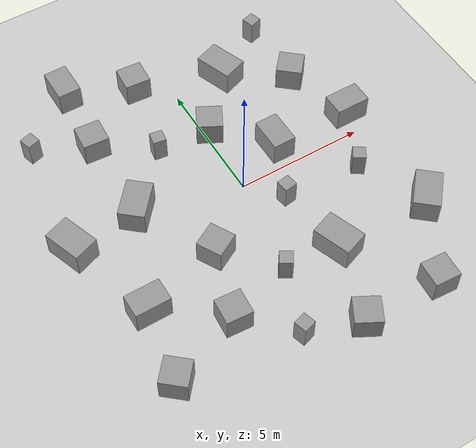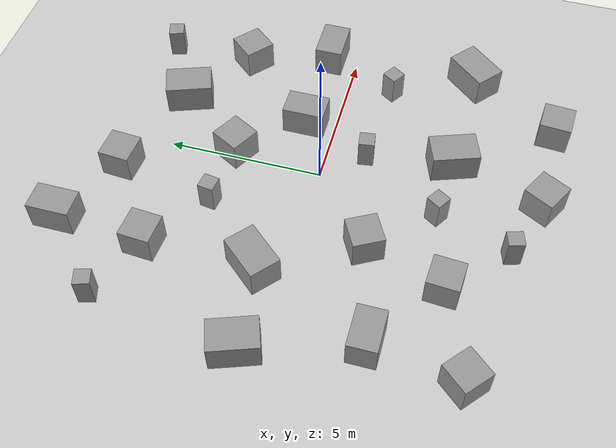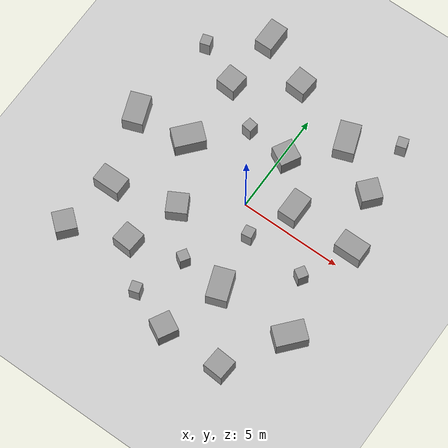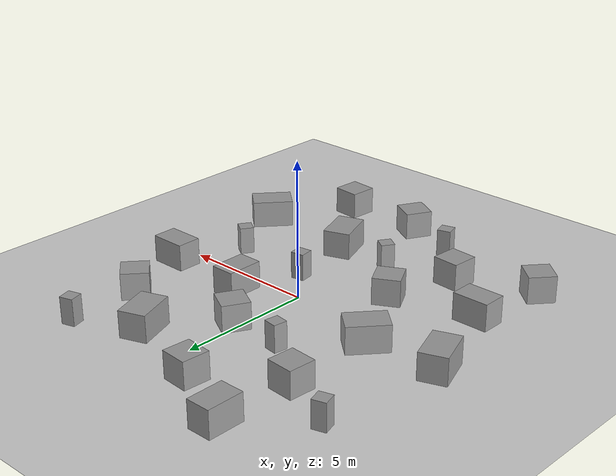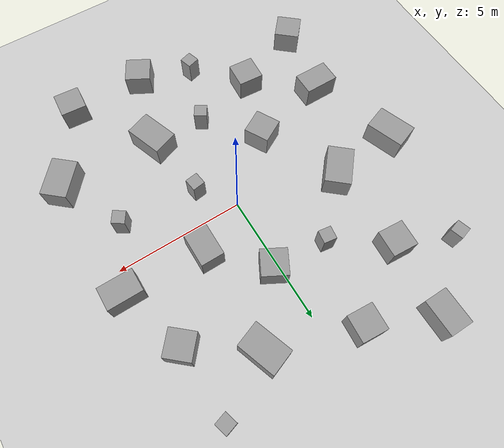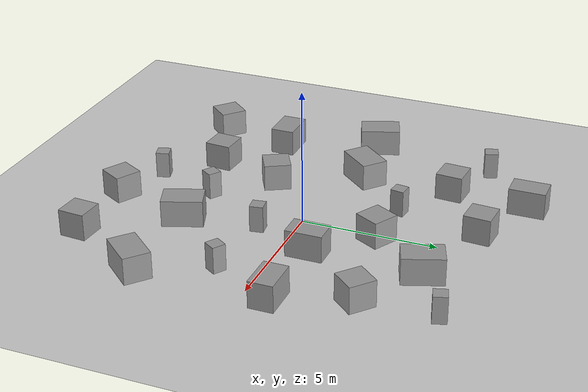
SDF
<sdf version="1.7">
 <world name="default">
  <light name="sun" type="directional">
   <pose>0 0 10 0 -0 0</pose>
   <diffuse>0.8 0.8 0.8 1</diffuse>
   <specular>0.2 0.2 0.2 1</specular>
   <attenuation>
    <range>1000</range>
    <constant>0.9</constant>
    <linear>0.01</linear>
    <quadratic>0.001</quadratic>
   </attenuation>
   <direction>-0.5 0.1 -0.9</direction>
   <spot><inner_angle>0</inner_angle><outer_angle>0</outer_angle><falloff>0</falloff></spot>
  </light>
  <model name="ground_plane">
   <static>1</static>
   <link name="link">
    <collision name="collision">
     <geometry><plane><normal>0 0 1</normal><size>100 100</size></plane></geometry>
     <surface>
      <contact><collide_bitmask>65535</collide_bitmask></contact>
      <friction><ode><mu>100</mu><mu2>50</mu2></ode></friction>
     </surface>
    </collision>
    <visual name="visual">
     <cast_shadows>0</cast_shadows>
     <geometry><plane><normal>0 0 1</normal><size>100 100</size></plane></geometry>
     <material>
      <script><uri>file://media/materials/scripts/gazebo.material</uri><name>Gazebo/Grey</name></script>
     </material>
    </visual>
   </link>
  </model>
  <gravity>0 0 -9.8</gravity>
  <magnetic_field>6e-06 2.3e-05 -4.2e-05</magnetic_field>
  <atmosphere type="adiabatic"/>
  <physics type="ode">
   <max_step_size>0.001</max_step_size>
   <real_time_factor>1</real_time_factor>
   <real_time_update_rate>500</real_time_update_rate>
  </physics>
  <scene><ambient>0.4 0.4 0.4 1</ambient><background>0.7 0.7 0.7 1</background><shadows>1</shadows></scene>
  <spherical_coordinates>
   <surface_model>EARTH_WGS84</surface_model>
   <latitude_deg>0</latitude_deg>
   <longitude_deg>0</longitude_deg>
   <elevation>0</elevation>
   <heading_deg>0</heading_deg>
  </spherical_coordinates>
  <model name="OnlyRectangles">
   <link name="link_0">
    <inertial>
     <mass>1</mass>
     <inertia>
      <ixx>0.166667</ixx>
      <ixy>0</ixy>
      <ixz>0</ixz>
      <iyy>0.166667</iyy>
      <iyz>0</iyz>
      <izz>0.166667</izz>
     </inertia>
    </inertial>
    <pose>-1.86233 -1.91106 0 0 -0 0.5</pose>
    <visual name="visual">
     <geometry><box><size>1 1 1</size></box></geometry>
     <material>
      <lighting>1</lighting>
      <script><uri>file://media/materials/scripts/gazebo.material</uri><name>Gazebo/Grey</name></script>
      <shader type="pixel"><normal_map>__default__</normal_map></shader>
      <ambient>0.3 0.3 0.3 1</ambient>
      <diffuse>0.7 0.7 0.7 1</diffuse>
      <specular>0.01 0.01 0.01 1</specular>
      <emissive>0 0 0 1</emissive>
     </material>
    </visual>
    <collision name="collision">
     <geometry><box><size>1 1 1</size></box></geometry>
     <surface>
      <friction>
       <ode><mu>1</mu><mu2>1</mu2><fdir1>0 0 0</fdir1><slip1>0</slip1><slip2>0</slip2></ode>
       <torsional>
        <coefficient>1</coefficient>
        <patch_radius>0</patch_radius>
        <surface_radius>0</surface_radius>
        <use_patch_radius>1</use_patch_radius>
        <ode><slip>0</slip></ode>
       </torsional>
      </friction>
      <bounce><restitution_coefficient>0</restitution_coefficient><threshold>1e+06</threshold></bounce>
      <contact>
       <collide_without_contact>0</collide_without_contact>
       <collide_without_contact_bitmask>1</collide_without_contact_bitmask>
       <collide_bitmask>1</collide_bitmask>
       <ode>
        <soft_cfm>0</soft_cfm>
        <soft_erp>0.2</soft_erp>
        <kp>1e+13</kp>
        <kd>1</kd>
        <max_vel>0.01</max_vel>
        <min_depth>0</min_depth>
       </ode>
       <bullet>
        <split_impulse>1</split_impulse>
        <split_impulse_penetration_threshold>-0.01</split_impulse_penetration_threshold>
        <soft_cfm>0</soft_cfm>
        <soft_erp>0.2</soft_erp>
        <kp>1e+13</kp>
        <kd>1</kd>
       </bullet>
      </contact>
     </surface>
    </collision>
   </link>
   <link name="link_0_clone">
    <inertial>
     <mass>1</mass>
     <inertia>
      <ixx>0.166667</ixx>
      <ixy>0</ixy>
      <ixz>0</ixz>
      <iyy>0.166667</iyy>
      <iyz>0</iyz>
      <izz>0.166667</izz>
     </inertia>
    </inertial>
    <pose>4.84886 3.66237 0 0 0 -2.28319</pose>
    <visual name="visual">
     <geometry><box><size>1 1 1</size></box></geometry>
     <material>
      <lighting>1</lighting>
      <script><uri>file://media/materials/scripts/gazebo.material</uri><name>Gazebo/Grey</name></script>
      <shader type="pixel"><normal_map>__default__</normal_map></shader>
      <ambient>0.3 0.3 0.3 1</ambient>
      <diffuse>0.7 0.7 0.7 1</diffuse>
      <specular>0.01 0.01 0.01 1</specular>
      <emissive>0 0 0 1</emissive>
     </material>
    </visual>
    <collision name="collision">
     <geometry><box><size>1 1 1</size></box></geometry>
     <surface>
      <friction>
       <ode><mu>1</mu><mu2>1</mu2><fdir1>0 0 0</fdir1><slip1>0</slip1><slip2>0</slip2></ode>
       <torsional>
        <coefficient>1</coefficient>
        <patch_radius>0</patch_radius>
        <surface_radius>0</surface_radius>
        <use_patch_radius>1</use_patch_radius>
        <ode><slip>0</slip></ode>
       </torsional>
      </friction>
      <bounce><restitution_coefficient>0</restitution_coefficient><threshold>1e+06</threshold></bounce>
      <contact>
       <collide_without_contact>0</collide_without_contact>
       <collide_without_contact_bitmask>1</collide_without_contact_bitmask>
       <collide_bitmask>1</collide_bitmask>
       <ode>
        <soft_cfm>0</soft_cfm>
        <soft_erp>0.2</soft_erp>
        <kp>1e+13</kp>
        <kd>1</kd>
        <max_vel>0.01</max_vel>
        <min_depth>0</min_depth>
       </ode>
       <bullet>
        <split_impulse>1</split_impulse>
        <split_impulse_penetration_threshold>-0.01</split_impulse_penetration_threshold>
        <soft_cfm>0</soft_cfm>
        <soft_erp>0.2</soft_erp>
        <kp>1e+13</kp>
        <kd>1</kd>
       </bullet>
      </contact>
     </surface>
    </collision>
   </link>
   <link name="link_0_clone_0">
    <inertial>
     <mass>1</mass>
     <inertia>
      <ixx>0.166667</ixx>
      <ixy>0</ixy>
      <ixz>0</ixz>
      <iyy>0.166667</iyy>
      <iyz>0</iyz>
      <izz>0.166667</izz>
     </inertia>
    </inertial>
    <pose>4.07382 -6.91562 0 0 -0 1.5</pose>
    <visual name="visual">
     <geometry><box><size>1 1 1</size></box></geometry>
     <material>
      <lighting>1</lighting>
      <script><uri>file://media/materials/scripts/gazebo.material</uri><name>Gazebo/Grey</name></script>
      <shader type="pixel"><normal_map>__default__</normal_map></shader>
      <ambient>0.3 0.3 0.3 1</ambient>
      <diffuse>0.7 0.7 0.7 1</diffuse>
      <specular>0.01 0.01 0.01 1</specular>
      <emissive>0 0 0 1</emissive>
     </material>
    </visual>
    <collision name="collision">
     <geometry><box><size>1 1 1</size></box></geometry>
     <surface>
      <friction>
       <ode><mu>1</mu><mu2>1</mu2><fdir1>0 0 0</fdir1><slip1>0</slip1><slip2>0</slip2></ode>
       <torsional>
        <coefficient>1</coefficient>
        <patch_radius>0</patch_radius>
        <surface_radius>0</surface_radius>
        <use_patch_radius>1</use_patch_radius>
        <ode><slip>0</slip></ode>
       </torsional>
      </friction>
      <bounce><restitution_coefficient>0</restitution_coefficient><threshold>1e+06</threshold></bounce>
      <contact>
       <collide_without_contact>0</collide_without_contact>
       <collide_without_contact_bitmask>1</collide_without_contact_bitmask>
       <collide_bitmask>1</collide_bitmask>
       <ode>
        <soft_cfm>0</soft_cfm>
        <soft_erp>0.2</soft_erp>
        <kp>1e+13</kp>
        <kd>1</kd>
        <max_vel>0.01</max_vel>
        <min_depth>0</min_depth>
       </ode>
       <bullet>
        <split_impulse>1</split_impulse>
        <split_impulse_penetration_threshold>-0.01</split_impulse_penetration_threshold>
        <soft_cfm>0</soft_cfm>
        <soft_erp>0.2</soft_erp>
        <kp>1e+13</kp>
        <kd>1</kd>
       </bullet>
      </contact>
     </surface>
    </collision>
   </link>
   <link name="link_0_clone_0_clone">
    <inertial>
     <mass>1</mass>
     <inertia>
      <ixx>0.166667</ixx>
      <ixy>0</ixy>
      <ixz>0</ixz>
      <iyy>0.166667</iyy>
      <iyz>0</iyz>
      <izz>0.166667</izz>
     </inertia>
    </inertial>
    <pose>-2.6988 -4.48768 0 0 -0 1.5</pose>
    <visual name="visual">
     <geometry><box><size>1 1 1</size></box></geometry>
     <material>
      <lighting>1</lighting>
      <script><uri>file://media/materials/scripts/gazebo.material</uri><name>Gazebo/Grey</name></script>
      <shader type="pixel"><normal_map>__default__</normal_map></shader>
      <ambient>0.3 0.3 0.3 1</ambient>
      <diffuse>0.7 0.7 0.7 1</diffuse>
      <specular>0.01 0.01 0.01 1</specular>
      <emissive>0 0 0 1</emissive>
     </material>
    </visual>
    <collision name="collision">
     <geometry><box><size>1 1 1</size></box></geometry>
     <surface>
      <friction>
       <ode><mu>1</mu><mu2>1</mu2><fdir1>0 0 0</fdir1><slip1>0</slip1><slip2>0</slip2></ode>
       <torsional>
        <coefficient>1</coefficient>
        <patch_radius>0</patch_radius>
        <surface_radius>0</surface_radius>
        <use_patch_radius>1</use_patch_radius>
        <ode><slip>0</slip></ode>
       </torsional>
      </friction>
      <bounce><restitution_coefficient>0</restitution_coefficient><threshold>1e+06</threshold></bounce>
      <contact>
       <collide_without_contact>0</collide_without_contact>
       <collide_without_contact_bitmask>1</collide_without_contact_bitmask>
       <collide_bitmask>1</collide_bitmask>
       <ode>
        <soft_cfm>0</soft_cfm>
        <soft_erp>0.2</soft_erp>
        <kp>1e+13</kp>
        <kd>1</kd>
        <max_vel>0.01</max_vel>
        <min_depth>0</min_depth>
       </ode>
       <bullet>
        <split_impulse>1</split_impulse>
        <split_impulse_penetration_threshold>-0.01</split_impulse_penetration_threshold>
        <soft_cfm>0</soft_cfm>
        <soft_erp>0.2</soft_erp>
        <kp>1e+13</kp>
        <kd>1</kd>
       </bullet>
      </contact>
     </surface>
    </collision>
   </link>
   <link name="link_0_clone_0_clone_0">
    <inertial>
     <mass>1</mass>
     <inertia>
      <ixx>0.166667</ixx>
      <ixy>0</ixy>
      <ixz>0</ixz>
      <iyy>0.166667</iyy>
      <iyz>0</iyz>
      <izz>0.166667</izz>
     </inertia>
    </inertial>
    <pose>-3.444 4.51632 0 0 -0 1.5</pose>
    <visual name="visual">
     <geometry><box><size>1 1 1</size></box></geometry>
     <material>
      <lighting>1</lighting>
      <script><uri>file://media/materials/scripts/gazebo.material</uri><name>Gazebo/Grey</name></script>
      <shader type="pixel"><normal_map>__default__</normal_map></shader>
      <ambient>0.3 0.3 0.3 1</ambient>
      <diffuse>0.7 0.7 0.7 1</diffuse>
      <specular>0.01 0.01 0.01 1</specular>
      <emissive>0 0 0 1</emissive>
     </material>
    </visual>
    <collision name="collision">
     <geometry><box><size>1 1 1</size></box></geometry>
     <surface>
      <friction>
       <ode><mu>1</mu><mu2>1</mu2><fdir1>0 0 0</fdir1><slip1>0</slip1><slip2>0</slip2></ode>
       <torsional>
        <coefficient>1</coefficient>
        <patch_radius>0</patch_radius>
        <surface_radius>0</surface_radius>
        <use_patch_radius>1</use_patch_radius>
        <ode><slip>0</slip></ode>
       </torsional>
      </friction>
      <bounce><restitution_coefficient>0</restitution_coefficient><threshold>1e+06</threshold></bounce>
      <contact>
       <collide_without_contact>0</collide_without_contact>
       <collide_without_contact_bitmask>1</collide_without_contact_bitmask>
       <collide_bitmask>1</collide_bitmask>
       <ode>
        <soft_cfm>0</soft_cfm>
        <soft_erp>0.2</soft_erp>
        <kp>1e+13</kp>
        <kd>1</kd>
        <max_vel>0.01</max_vel>
        <min_depth>0</min_depth>
       </ode>
       <bullet>
        <split_impulse>1</split_impulse>
        <split_impulse_penetration_threshold>-0.01</split_impulse_penetration_threshold>
        <soft_cfm>0</soft_cfm>
        <soft_erp>0.2</soft_erp>
        <kp>1e+13</kp>
        <kd>1</kd>
       </bullet>
      </contact>
     </surface>
    </collision>
   </link>
   <link name="link_0_clone_0_clone_1">
    <inertial>
     <mass>1</mass>
     <inertia>
      <ixx>0.166667</ixx>
      <ixy>0</ixy>
      <ixz>0</ixz>
      <iyy>0.166667</iyy>
      <iyz>0</iyz>
      <izz>0.166667</izz>
     </inertia>
    </inertial>
    <pose>-0.746789 6.29063 0 0 -0 1.5</pose>
    <visual name="visual">
     <geometry><box><size>1 1 1</size></box></geometry>
     <material>
      <lighting>1</lighting>
      <script><uri>file://media/materials/scripts/gazebo.material</uri><name>Gazebo/Grey</name></script>
      <shader type="pixel"><normal_map>__default__</normal_map></shader>
      <ambient>0.3 0.3 0.3 1</ambient>
      <diffuse>0.7 0.7 0.7 1</diffuse>
      <specular>0.01 0.01 0.01 1</specular>
      <emissive>0 0 0 1</emissive>
     </material>
    </visual>
    <collision name="collision">
     <geometry><box><size>1 1 1</size></box></geometry>
     <surface>
      <friction>
       <ode><mu>1</mu><mu2>1</mu2><fdir1>0 0 0</fdir1><slip1>0</slip1><slip2>0</slip2></ode>
       <torsional>
        <coefficient>1</coefficient>
        <patch_radius>0</patch_radius>
        <surface_radius>0</surface_radius>
        <use_patch_radius>1</use_patch_radius>
        <ode><slip>0</slip></ode>
       </torsional>
      </friction>
      <bounce><restitution_coefficient>0</restitution_coefficient><threshold>1e+06</threshold></bounce>
      <contact>
       <collide_without_contact>0</collide_without_contact>
       <collide_without_contact_bitmask>1</collide_without_contact_bitmask>
       <collide_bitmask>1</collide_bitmask>
       <ode>
        <soft_cfm>0</soft_cfm>
        <soft_erp>0.2</soft_erp>
        <kp>1e+13</kp>
        <kd>1</kd>
        <max_vel>0.01</max_vel>
        <min_depth>0</min_depth>
       </ode>
       <bullet>
        <split_impulse>1</split_impulse>
        <split_impulse_penetration_threshold>-0.01</split_impulse_penetration_threshold>
        <soft_cfm>0</soft_cfm>
        <soft_erp>0.2</soft_erp>
        <kp>1e+13</kp>
        <kd>1</kd>
       </bullet>
      </contact>
     </surface>
    </collision>
   </link>
   <link name="link_0_clone_1">
    <inertial>
     <mass>1</mass>
     <inertia>
      <ixx>0.166667</ixx>
      <ixy>0</ixy>
      <ixz>0</ixz>
      <iyy>0.166667</iyy>
      <iyz>0</iyz>
      <izz>0.166667</izz>
     </inertia>
    </inertial>
    <pose>-5.54051 5.42187 0 0 0 -1.28319</pose>
    <visual name="visual">
     <geometry><box><size>0.5 0.5 1</size></box></geometry>
     <material>
      <lighting>1</lighting>
      <script><uri>file://media/materials/scripts/gazebo.material</uri><name>Gazebo/Grey</name></script>
      <shader type="pixel"><normal_map>__default__</normal_map></shader>
      <ambient>0.3 0.3 0.3 1</ambient>
      <diffuse>0.7 0.7 0.7 1</diffuse>
      <specular>0.01 0.01 0.01 1</specular>
      <emissive>0 0 0 1</emissive>
     </material>
    </visual>
    <collision name="collision">
     <geometry><box><size>0.5 0.5 1</size></box></geometry>
     <surface>
      <friction>
       <ode><mu>1</mu><mu2>1</mu2><fdir1>0 0 0</fdir1><slip1>0</slip1><slip2>0</slip2></ode>
       <torsional>
        <coefficient>1</coefficient>
        <patch_radius>0</patch_radius>
        <surface_radius>0</surface_radius>
        <use_patch_radius>1</use_patch_radius>
        <ode><slip>0</slip></ode>
       </torsional>
      </friction>
      <bounce><restitution_coefficient>0</restitution_coefficient><threshold>1e+06</threshold></bounce>
      <contact>
       <collide_without_contact>0</collide_without_contact>
       <collide_without_contact_bitmask>1</collide_without_contact_bitmask>
       <collide_bitmask>1</collide_bitmask>
       <ode>
        <soft_cfm>0</soft_cfm>
        <soft_erp>0.2</soft_erp>
        <kp>1e+13</kp>
        <kd>1</kd>
        <max_vel>0.01</max_vel>
        <min_depth>0</min_depth>
       </ode>
       <bullet>
        <split_impulse>1</split_impulse>
        <split_impulse_penetration_threshold>-0.01</split_impulse_penetration_threshold>
        <soft_cfm>0</soft_cfm>
        <soft_erp>0.2</soft_erp>
        <kp>1e+13</kp>
        <kd>1</kd>
       </bullet>
      </contact>
     </surface>
    </collision>
   </link>
   <link name="link_0_clone_1_clone">
    <inertial>
     <mass>1</mass>
     <inertia>
      <ixx>0.166667</ixx>
      <ixy>0</ixy>
      <ixz>0</ixz>
      <iyy>0.166667</iyy>
      <iyz>0</iyz>
      <izz>0.166667</izz>
     </inertia>
    </inertial>
    <pose>-1.40181 3.10383 0 0 -0 3</pose>
    <visual name="visual">
     <geometry><box><size>0.5 0.5 1</size></box></geometry>
     <material>
      <lighting>1</lighting>
      <script><uri>file://media/materials/scripts/gazebo.material</uri><name>Gazebo/Grey</name></script>
      <shader type="pixel"><normal_map>__default__</normal_map></shader>
      <ambient>0.3 0.3 0.3 1</ambient>
      <diffuse>0.7 0.7 0.7 1</diffuse>
      <specular>0.01 0.01 0.01 1</specular>
      <emissive>0 0 0 1</emissive>
     </material>
    </visual>
    <collision name="collision">
     <geometry><box><size>0.5 0.5 1</size></box></geometry>
     <surface>
      <friction>
       <ode><mu>1</mu><mu2>1</mu2><fdir1>0 0 0</fdir1><slip1>0</slip1><slip2>0</slip2></ode>
       <torsional>
        <coefficient>1</coefficient>
        <patch_radius>0</patch_radius>
        <surface_radius>0</surface_radius>
        <use_patch_radius>1</use_patch_radius>
        <ode><slip>0</slip></ode>
       </torsional>
      </friction>
      <bounce><restitution_coefficient>0</restitution_coefficient><threshold>1e+06</threshold></bounce>
      <contact>
       <collide_without_contact>0</collide_without_contact>
       <collide_without_contact_bitmask>1</collide_without_contact_bitmask>
       <collide_bitmask>1</collide_bitmask>
       <ode>
        <soft_cfm>0</soft_cfm>
        <soft_erp>0.2</soft_erp>
        <kp>1e+13</kp>
        <kd>1</kd>
        <max_vel>0.01</max_vel>
        <min_depth>0</min_depth>
       </ode>
       <bullet>
        <split_impulse>1</split_impulse>
        <split_impulse_penetration_threshold>-0.01</split_impulse_penetration_threshold>
        <soft_cfm>0</soft_cfm>
        <soft_erp>0.2</soft_erp>
        <kp>1e+13</kp>
        <kd>1</kd>
       </bullet>
      </contact>
     </surface>
    </collision>
   </link>
   <link name="link_0_clone_1_clone_0">
    <inertial>
     <mass>1</mass>
     <inertia>
      <ixx>0.166667</ixx>
      <ixy>0</ixy>
      <ixz>0</ixz>
      <iyy>0.166667</iyy>
      <iyz>0</iyz>
      <izz>0.166667</izz>
     </inertia>
    </inertial>
    <pose>4.59222 -1.38594 0 0 -0 1</pose>
    <visual name="visual">
     <geometry><box><size>0.5 0.5 1</size></box></geometry>
     <material>
      <lighting>1</lighting>
      <script><uri>file://media/materials/scripts/gazebo.material</uri><name>Gazebo/Grey</name></script>
      <shader type="pixel"><normal_map>__default__</normal_map></shader>
      <ambient>0.3 0.3 0.3 1</ambient>
      <diffuse>0.7 0.7 0.7 1</diffuse>
      <specular>0.01 0.01 0.01 1</specular>
      <emissive>0 0 0 1</emissive>
     </material>
    </visual>
    <collision name="collision">
     <geometry><box><size>0.5 0.5 1</size></box></geometry>
     <surface>
      <friction>
       <ode><mu>1</mu><mu2>1</mu2><fdir1>0 0 0</fdir1><slip1>0</slip1><slip2>0</slip2></ode>
       <torsional>
        <coefficient>1</coefficient>
        <patch_radius>0</patch_radius>
        <surface_radius>0</surface_radius>
        <use_patch_radius>1</use_patch_radius>
        <ode><slip>0</slip></ode>
       </torsional>
      </friction>
      <bounce><restitution_coefficient>0</restitution_coefficient><threshold>1e+06</threshold></bounce>
      <contact>
       <collide_without_contact>0</collide_without_contact>
       <collide_without_contact_bitmask>1</collide_without_contact_bitmask>
       <collide_bitmask>1</collide_bitmask>
       <ode>
        <soft_cfm>0</soft_cfm>
        <soft_erp>0.2</soft_erp>
        <kp>1e+13</kp>
        <kd>1</kd>
        <max_vel>0.01</max_vel>
        <min_depth>0</min_depth>
       </ode>
       <bullet>
        <split_impulse>1</split_impulse>
        <split_impulse_penetration_threshold>-0.01</split_impulse_penetration_threshold>
        <soft_cfm>0</soft_cfm>
        <soft_erp>0.2</soft_erp>
        <kp>1e+13</kp>
        <kd>1</kd>
       </bullet>
      </contact>
     </surface>
    </collision>
   </link>
   <link name="link_0_clone_1_clone_0_clone">
    <inertial>
     <mass>1</mass>
     <inertia>
      <ixx>0.166667</ixx>
      <ixy>0</ixy>
      <ixz>0</ixz>
      <iyy>0.166667</iyy>
      <iyz>0</iyz>
      <izz>0.166667</izz>
     </inertia>
    </inertial>
    <pose>-0.160714 -3.79233 0 0 -0 1</pose>
    <visual name="visual">
     <geometry><box><size>0.5 0.5 1</size></box></geometry>
     <material>
      <lighting>1</lighting>
      <script><uri>file://media/materials/scripts/gazebo.material</uri><name>Gazebo/Grey</name></script>
      <shader type="pixel"><normal_map>__default__</normal_map></shader>
      <ambient>0.3 0.3 0.3 1</ambient>
      <diffuse>0.7 0.7 0.7 1</diffuse>
      <specular>0.01 0.01 0.01 1</specular>
      <emissive>0 0 0 1</emissive>
     </material>
    </visual>
    <collision name="collision">
     <geometry><box><size>0.5 0.5 1</size></box></geometry>
     <surface>
      <friction>
       <ode><mu>1</mu><mu2>1</mu2><fdir1>0 0 0</fdir1><slip1>0</slip1><slip2>0</slip2></ode>
       <torsional>
        <coefficient>1</coefficient>
        <patch_radius>0</patch_radius>
        <surface_radius>0</surface_radius>
        <use_patch_radius>1</use_patch_radius>
        <ode><slip>0</slip></ode>
       </torsional>
      </friction>
      <bounce><restitution_coefficient>0</restitution_coefficient><threshold>1e+06</threshold></bounce>
      <contact>
       <collide_without_contact>0</collide_without_contact>
       <collide_without_contact_bitmask>1</collide_without_contact_bitmask>
       <collide_bitmask>1</collide_bitmask>
       <ode>
        <soft_cfm>0</soft_cfm>
        <soft_erp>0.2</soft_erp>
        <kp>1e+13</kp>
        <kd>1</kd>
        <max_vel>0.01</max_vel>
        <min_depth>0</min_depth>
       </ode>
       <bullet>
        <split_impulse>1</split_impulse>
        <split_impulse_penetration_threshold>-0.01</split_impulse_penetration_threshold>
        <soft_cfm>0</soft_cfm>
        <soft_erp>0.2</soft_erp>
        <kp>1e+13</kp>
        <kd>1</kd>
       </bullet>
      </contact>
     </surface>
    </collision>
   </link>
   <link name="link_0_clone_1_clone_1">
    <inertial>
     <mass>1</mass>
     <inertia>
      <ixx>0.166667</ixx>
      <ixy>0</ixy>
      <ixz>0</ixz>
      <iyy>0.166667</iyy>
      <iyz>0</iyz>
      <izz>0.166667</izz>
     </inertia>
    </inertial>
    <pose>-1.00706 -6.22144 0 0 0 -1.28319</pose>
    <visual name="visual">
     <geometry><box><size>0.5 0.5 1</size></box></geometry>
     <material>
      <lighting>1</lighting>
      <script><uri>file://media/materials/scripts/gazebo.material</uri><name>Gazebo/Grey</name></script>
      <shader type="pixel"><normal_map>__default__</normal_map></shader>
      <ambient>0.3 0.3 0.3 1</ambient>
      <diffuse>0.7 0.7 0.7 1</diffuse>
      <specular>0.01 0.01 0.01 1</specular>
      <emissive>0 0 0 1</emissive>
     </material>
    </visual>
    <collision name="collision">
     <geometry><box><size>0.5 0.5 1</size></box></geometry>
     <surface>
      <friction>
       <ode><mu>1</mu><mu2>1</mu2><fdir1>0 0 0</fdir1><slip1>0</slip1><slip2>0</slip2></ode>
       <torsional>
        <coefficient>1</coefficient>
        <patch_radius>0</patch_radius>
        <surface_radius>0</surface_radius>
        <use_patch_radius>1</use_patch_radius>
        <ode><slip>0</slip></ode>
       </torsional>
      </friction>
      <bounce><restitution_coefficient>0</restitution_coefficient><threshold>1e+06</threshold></bounce>
      <contact>
       <collide_without_contact>0</collide_without_contact>
       <collide_without_contact_bitmask>1</collide_without_contact_bitmask>
       <collide_bitmask>1</collide_bitmask>
       <ode>
        <soft_cfm>0</soft_cfm>
        <soft_erp>0.2</soft_erp>
        <kp>1e+13</kp>
        <kd>1</kd>
        <max_vel>0.01</max_vel>
        <min_depth>0</min_depth>
       </ode>
       <bullet>
        <split_impulse>1</split_impulse>
        <split_impulse_penetration_threshold>-0.01</split_impulse_penetration_threshold>
        <soft_cfm>0</soft_cfm>
        <soft_erp>0.2</soft_erp>
        <kp>1e+13</kp>
        <kd>1</kd>
       </bullet>
      </contact>
     </surface>
    </collision>
   </link>
   <link name="link_0_clone_1_clone_1_clone">
    <inertial>
     <mass>1</mass>
     <inertia>
      <ixx>0.166667</ixx>
      <ixy>0</ixy>
      <ixz>0</ixz>
      <iyy>0.166667</iyy>
      <iyz>0</iyz>
      <izz>0.166667</izz>
     </inertia>
    </inertial>
    <pose>4.76877 6.4452 0 0 0 -1.28319</pose>
    <visual name="visual">
     <geometry><box><size>0.5 0.5 1</size></box></geometry>
     <material>
      <lighting>1</lighting>
      <script><uri>file://media/materials/scripts/gazebo.material</uri><name>Gazebo/Grey</name></script>
      <shader type="pixel"><normal_map>__default__</normal_map></shader>
      <ambient>0.3 0.3 0.3 1</ambient>
      <diffuse>0.7 0.7 0.7 1</diffuse>
      <specular>0.01 0.01 0.01 1</specular>
      <emissive>0 0 0 1</emissive>
     </material>
    </visual>
    <collision name="collision">
     <geometry><box><size>0.5 0.5 1</size></box></geometry>
     <surface>
      <friction>
       <ode><mu>1</mu><mu2>1</mu2><fdir1>0 0 0</fdir1><slip1>0</slip1><slip2>0</slip2></ode>
       <torsional>
        <coefficient>1</coefficient>
        <patch_radius>0</patch_radius>
        <surface_radius>0</surface_radius>
        <use_patch_radius>1</use_patch_radius>
        <ode><slip>0</slip></ode>
       </torsional>
      </friction>
      <bounce><restitution_coefficient>0</restitution_coefficient><threshold>1e+06</threshold></bounce>
      <contact>
       <collide_without_contact>0</collide_without_contact>
       <collide_without_contact_bitmask>1</collide_without_contact_bitmask>
       <collide_bitmask>1</collide_bitmask>
       <ode>
        <soft_cfm>0</soft_cfm>
        <soft_erp>0.2</soft_erp>
        <kp>1e+13</kp>
        <kd>1</kd>
        <max_vel>0.01</max_vel>
        <min_depth>0</min_depth>
       </ode>
       <bullet>
        <split_impulse>1</split_impulse>
        <split_impulse_penetration_threshold>-0.01</split_impulse_penetration_threshold>
        <soft_cfm>0</soft_cfm>
        <soft_erp>0.2</soft_erp>
        <kp>1e+13</kp>
        <kd>1</kd>
       </bullet>
      </contact>
     </surface>
    </collision>
   </link>
   <link name="link_0_clone_1_clone_clone">
    <inertial>
     <mass>1</mass>
     <inertia>
      <ixx>0.166667</ixx>
      <ixy>0</ixy>
      <ixz>0</ixz>
      <iyy>0.166667</iyy>
      <iyz>0</iyz>
      <izz>0.166667</izz>
     </inertia>
    </inertial>
    <pose>1.56007 -1.17133 0 0 0 -3</pose>
    <visual name="visual">
     <geometry><box><size>0.5 0.5 1</size></box></geometry>
     <material>
      <lighting>1</lighting>
      <script><uri>file://media/materials/scripts/gazebo.material</uri><name>Gazebo/Grey</name></script>
      <shader type="pixel"><normal_map>__default__</normal_map></shader>
      <ambient>0.3 0.3 0.3 1</ambient>
      <diffuse>0.7 0.7 0.7 1</diffuse>
      <specular>0.01 0.01 0.01 1</specular>
      <emissive>0 0 0 1</emissive>
     </material>
    </visual>
    <collision name="collision">
     <geometry><box><size>0.5 0.5 1</size></box></geometry>
     <surface>
      <friction>
       <ode><mu>1</mu><mu2>1</mu2><fdir1>0 0 0</fdir1><slip1>0</slip1><slip2>0</slip2></ode>
       <torsional>
        <coefficient>1</coefficient>
        <patch_radius>0</patch_radius>
        <surface_radius>0</surface_radius>
        <use_patch_radius>1</use_patch_radius>
        <ode><slip>0</slip></ode>
       </torsional>
      </friction>
      <bounce><restitution_coefficient>0</restitution_coefficient><threshold>1e+06</threshold></bounce>
      <contact>
       <collide_without_contact>0</collide_without_contact>
       <collide_without_contact_bitmask>1</collide_without_contact_bitmask>
       <collide_bitmask>1</collide_bitmask>
       <ode>
        <soft_cfm>0</soft_cfm>
        <soft_erp>0.2</soft_erp>
        <kp>1e+13</kp>
        <kd>1</kd>
        <max_vel>0.01</max_vel>
        <min_depth>0</min_depth>
       </ode>
       <bullet>
        <split_impulse>1</split_impulse>
        <split_impulse_penetration_threshold>-0.01</split_impulse_penetration_threshold>
        <soft_cfm>0</soft_cfm>
        <soft_erp>0.2</soft_erp>
        <kp>1e+13</kp>
        <kd>1</kd>
       </bullet>
      </contact>
     </surface>
    </collision>
   </link>
   <link name="link_0_clone_clone">
    <inertial>
     <mass>1</mass>
     <inertia>
      <ixx>0.166667</ixx>
      <ixy>0</ixy>
      <ixz>0</ixz>
      <iyy>0.166667</iyy>
      <iyz>0</iyz>
      <izz>0.166667</izz>
     </inertia>
    </inertial>
    <pose>-3.42205 1.07074 0 0 0 -2.28319</pose>
    <visual name="visual">
     <geometry><box><size>1.5 1 1</size></box></geometry>
     <material>
      <lighting>1</lighting>
      <script><uri>file://media/materials/scripts/gazebo.material</uri><name>Gazebo/Grey</name></script>
      <shader type="pixel"><normal_map>__default__</normal_map></shader>
      <ambient>0.3 0.3 0.3 1</ambient>
      <diffuse>0.7 0.7 0.7 1</diffuse>
      <specular>0.01 0.01 0.01 1</specular>
      <emissive>0 0 0 1</emissive>
     </material>
    </visual>
    <collision name="collision">
     <geometry><box><size>1.5 1 1</size></box></geometry>
     <surface>
      <friction>
       <ode><mu>1</mu><mu2>1</mu2><fdir1>0 0 0</fdir1><slip1>0</slip1><slip2>0</slip2></ode>
       <torsional>
        <coefficient>1</coefficient>
        <patch_radius>0</patch_radius>
        <surface_radius>0</surface_radius>
        <use_patch_radius>1</use_patch_radius>
        <ode><slip>0</slip></ode>
       </torsional>
      </friction>
      <bounce><restitution_coefficient>0</restitution_coefficient><threshold>1e+06</threshold></bounce>
      <contact>
       <collide_without_contact>0</collide_without_contact>
       <collide_without_contact_bitmask>1</collide_without_contact_bitmask>
       <collide_bitmask>1</collide_bitmask>
       <ode>
        <soft_cfm>0</soft_cfm>
        <soft_erp>0.2</soft_erp>
        <kp>1e+13</kp>
        <kd>1</kd>
        <max_vel>0.01</max_vel>
        <min_depth>0</min_depth>
       </ode>
       <bullet>
        <split_impulse>1</split_impulse>
        <split_impulse_penetration_threshold>-0.01</split_impulse_penetration_threshold>
        <soft_cfm>0</soft_cfm>
        <soft_erp>0.2</soft_erp>
        <kp>1e+13</kp>
        <kd>1</kd>
       </bullet>
      </contact>
     </surface>
    </collision>
   </link>
   <link name="link_0_clone_clone_0">
    <inertial>
     <mass>1</mass>
     <inertia>
      <ixx>0.166667</ixx>
      <ixy>0</ixy>
      <ixz>0</ixz>
      <iyy>0.166667</iyy>
      <iyz>0</iyz>
      <izz>0.166667</izz>
     </inertia>
    </inertial>
    <pose>-5.49965 -5.55208 0 0 0 -2.28319</pose>
    <visual name="visual">
     <geometry><box><size>1 1 1</size></box></geometry>
     <material>
      <lighting>1</lighting>
      <script><uri>file://media/materials/scripts/gazebo.material</uri><name>Gazebo/Grey</name></script>
      <shader type="pixel"><normal_map>__default__</normal_map></shader>
      <ambient>0.3 0.3 0.3 1</ambient>
      <diffuse>0.7 0.7 0.7 1</diffuse>
      <specular>0.01 0.01 0.01 1</specular>
      <emissive>0 0 0 1</emissive>
     </material>
    </visual>
    <collision name="collision">
     <geometry><box><size>1 1 1</size></box></geometry>
     <surface>
      <friction>
       <ode><mu>1</mu><mu2>1</mu2><fdir1>0 0 0</fdir1><slip1>0</slip1><slip2>0</slip2></ode>
       <torsional>
        <coefficient>1</coefficient>
        <patch_radius>0</patch_radius>
        <surface_radius>0</surface_radius>
        <use_patch_radius>1</use_patch_radius>
        <ode><slip>0</slip></ode>
       </torsional>
      </friction>
      <bounce><restitution_coefficient>0</restitution_coefficient><threshold>1e+06</threshold></bounce>
      <contact>
       <collide_without_contact>0</collide_without_contact>
       <collide_without_contact_bitmask>1</collide_without_contact_bitmask>
       <collide_bitmask>1</collide_bitmask>
       <ode>
        <soft_cfm>0</soft_cfm>
        <soft_erp>0.2</soft_erp>
        <kp>1e+13</kp>
        <kd>1</kd>
        <max_vel>0.01</max_vel>
        <min_depth>0</min_depth>
       </ode>
       <bullet>
        <split_impulse>1</split_impulse>
        <split_impulse_penetration_threshold>-0.01</split_impulse_penetration_threshold>
        <soft_cfm>0</soft_cfm>
        <soft_erp>0.2</soft_erp>
        <kp>1e+13</kp>
        <kd>1</kd>
       </bullet>
      </contact>
     </surface>
    </collision>
   </link>
   <link name="link_0_clone_clone_clone">
    <inertial>
     <mass>1</mass>
     <inertia>
      <ixx>0.166667</ixx>
      <ixy>0</ixy>
      <ixz>0</ixz>
      <iyy>0.166667</iyy>
      <iyz>0</iyz>
      <izz>0.166667</izz>
     </inertia>
    </inertial>
    <pose>1.96576 -3.90142 0 0 -0 1.91681</pose>
    <visual name="visual">
     <geometry><box><size>1.5 1 1</size></box></geometry>
     <material>
      <lighting>1</lighting>
      <script><uri>file://media/materials/scripts/gazebo.material</uri><name>Gazebo/Grey</name></script>
      <shader type="pixel"><normal_map>__default__</normal_map></shader>
      <ambient>0.3 0.3 0.3 1</ambient>
      <diffuse>0.7 0.7 0.7 1</diffuse>
      <specular>0.01 0.01 0.01 1</specular>
      <emissive>0 0 0 1</emissive>
     </material>
    </visual>
    <collision name="collision">
     <geometry><box><size>1.5 1 1</size></box></geometry>
     <surface>
      <friction>
       <ode><mu>1</mu><mu2>1</mu2><fdir1>0 0 0</fdir1><slip1>0</slip1><slip2>0</slip2></ode>
       <torsional>
        <coefficient>1</coefficient>
        <patch_radius>0</patch_radius>
        <surface_radius>0</surface_radius>
        <use_patch_radius>1</use_patch_radius>
        <ode><slip>0</slip></ode>
       </torsional>
      </friction>
      <bounce><restitution_coefficient>0</restitution_coefficient><threshold>1e+06</threshold></bounce>
      <contact>
       <collide_without_contact>0</collide_without_contact>
       <collide_without_contact_bitmask>1</collide_without_contact_bitmask>
       <collide_bitmask>1</collide_bitmask>
       <ode>
        <soft_cfm>0</soft_cfm>
        <soft_erp>0.2</soft_erp>
        <kp>1e+13</kp>
        <kd>1</kd>
        <max_vel>0.01</max_vel>
        <min_depth>0</min_depth>
       </ode>
       <bullet>
        <split_impulse>1</split_impulse>
        <split_impulse_penetration_threshold>-0.01</split_impulse_penetration_threshold>
        <soft_cfm>0</soft_cfm>
        <soft_erp>0.2</soft_erp>
        <kp>1e+13</kp>
        <kd>1</kd>
       </bullet>
      </contact>
     </surface>
    </collision>
   </link>
   <link name="link_0_clone_clone_clone_0">
    <inertial>
     <mass>1</mass>
     <inertia>
      <ixx>0.166667</ixx>
      <ixy>0</ixy>
      <ixz>0</ixz>
      <iyy>0.166667</iyy>
      <iyz>0</iyz>
      <izz>0.166667</izz>
     </inertia>
    </inertial>
    <pose>5.78939 -3.9819 0 0 0 -2.28319</pose>
    <visual name="visual">
     <geometry><box><size>1.5 1 1</size></box></geometry>
     <material>
      <lighting>1</lighting>
      <script><uri>file://media/materials/scripts/gazebo.material</uri><name>Gazebo/Grey</name></script>
      <shader type="pixel"><normal_map>__default__</normal_map></shader>
      <ambient>0.3 0.3 0.3 1</ambient>
      <diffuse>0.7 0.7 0.7 1</diffuse>
      <specular>0.01 0.01 0.01 1</specular>
      <emissive>0 0 0 1</emissive>
     </material>
    </visual>
    <collision name="collision">
     <geometry><box><size>1.5 1 1</size></box></geometry>
     <surface>
      <friction>
       <ode><mu>1</mu><mu2>1</mu2><fdir1>0 0 0</fdir1><slip1>0</slip1><slip2>0</slip2></ode>
       <torsional>
        <coefficient>1</coefficient>
        <patch_radius>0</patch_radius>
        <surface_radius>0</surface_radius>
        <use_patch_radius>1</use_patch_radius>
        <ode><slip>0</slip></ode>
       </torsional>
      </friction>
      <bounce><restitution_coefficient>0</restitution_coefficient><threshold>1e+06</threshold></bounce>
      <contact>
       <collide_without_contact>0</collide_without_contact>
       <collide_without_contact_bitmask>1</collide_without_contact_bitmask>
       <collide_bitmask>1</collide_bitmask>
       <ode>
        <soft_cfm>0</soft_cfm>
        <soft_erp>0.2</soft_erp>
        <kp>1e+13</kp>
        <kd>1</kd>
        <max_vel>0.01</max_vel>
        <min_depth>0</min_depth>
       </ode>
       <bullet>
        <split_impulse>1</split_impulse>
        <split_impulse_penetration_threshold>-0.01</split_impulse_penetration_threshold>
        <soft_cfm>0</soft_cfm>
        <soft_erp>0.2</soft_erp>
        <kp>1e+13</kp>
        <kd>1</kd>
       </bullet>
      </contact>
     </surface>
    </collision>
   </link>
   <link name="link_0_clone_clone_clone_clone">
    <inertial>
     <mass>1</mass>
     <inertia>
      <ixx>0.166667</ixx>
      <ixy>0</ixy>
      <ixz>0</ixz>
      <iyy>0.166667</iyy>
      <iyz>0</iyz>
      <izz>0.166667</izz>
     </inertia>
    </inertial>
    <pose>2.50124 1.09194 0 0 -0 0</pose>
    <visual name="visual">
     <geometry><box><size>0.9 1.35 1</size></box></geometry>
     <material>
      <lighting>1</lighting>
      <script><uri>file://media/materials/scripts/gazebo.material</uri><name>Gazebo/Grey</name></script>
      <shader type="pixel"><normal_map>__default__</normal_map></shader>
      <ambient>0.3 0.3 0.3 1</ambient>
      <diffuse>0.7 0.7 0.7 1</diffuse>
      <specular>0.01 0.01 0.01 1</specular>
      <emissive>0 0 0 1</emissive>
     </material>
    </visual>
    <collision name="collision">
     <geometry><box><size>0.9 1.35 1</size></box></geometry>
     <surface>
      <friction>
       <ode><mu>1</mu><mu2>1</mu2><fdir1>0 0 0</fdir1><slip1>0</slip1><slip2>0</slip2></ode>
       <torsional>
        <coefficient>1</coefficient>
        <patch_radius>0</patch_radius>
        <surface_radius>0</surface_radius>
        <use_patch_radius>1</use_patch_radius>
        <ode><slip>0</slip></ode>
       </torsional>
      </friction>
      <bounce><restitution_coefficient>0</restitution_coefficient><threshold>1e+06</threshold></bounce>
      <contact>
       <collide_without_contact>0</collide_without_contact>
       <collide_without_contact_bitmask>1</collide_without_contact_bitmask>
       <collide_bitmask>1</collide_bitmask>
       <ode>
        <soft_cfm>0</soft_cfm>
        <soft_erp>0.2</soft_erp>
        <kp>1e+13</kp>
        <kd>1</kd>
        <max_vel>0.01</max_vel>
        <min_depth>0</min_depth>
       </ode>
       <bullet>
        <split_impulse>1</split_impulse>
        <split_impulse_penetration_threshold>-0.01</split_impulse_penetration_threshold>
        <soft_cfm>0</soft_cfm>
        <soft_erp>0.2</soft_erp>
        <kp>1e+13</kp>
        <kd>1</kd>
       </bullet>
      </contact>
     </surface>
    </collision>
   </link>
   <link name="link_0_clone_clone_clone_clone_0">
    <inertial>
     <mass>1</mass>
     <inertia>
      <ixx>0.166667</ixx>
      <ixy>0</ixy>
      <ixz>0</ixz>
      <iyy>0.166667</iyy>
      <iyz>0</iyz>
      <izz>0.166667</izz>
     </inertia>
    </inertial>
    <pose>2.56882 5.19651 0 0 -0 1.91681</pose>
    <visual name="visual">
     <geometry><box><size>1.5 1 1</size></box></geometry>
     <material>
      <lighting>1</lighting>
      <script><uri>file://media/materials/scripts/gazebo.material</uri><name>Gazebo/Grey</name></script>
      <shader type="pixel"><normal_map>__default__</normal_map></shader>
      <ambient>0.3 0.3 0.3 1</ambient>
      <diffuse>0.7 0.7 0.7 1</diffuse>
      <specular>0.01 0.01 0.01 1</specular>
      <emissive>0 0 0 1</emissive>
     </material>
    </visual>
    <collision name="collision">
     <geometry><box><size>1.5 1 1</size></box></geometry>
     <surface>
      <friction>
       <ode><mu>1</mu><mu2>1</mu2><fdir1>0 0 0</fdir1><slip1>0</slip1><slip2>0</slip2></ode>
       <torsional>
        <coefficient>1</coefficient>
        <patch_radius>0</patch_radius>
        <surface_radius>0</surface_radius>
        <use_patch_radius>1</use_patch_radius>
        <ode><slip>0</slip></ode>
       </torsional>
      </friction>
      <bounce><restitution_coefficient>0</restitution_coefficient><threshold>1e+06</threshold></bounce>
      <contact>
       <collide_without_contact>0</collide_without_contact>
       <collide_without_contact_bitmask>1</collide_without_contact_bitmask>
       <collide_bitmask>1</collide_bitmask>
       <ode>
        <soft_cfm>0</soft_cfm>
        <soft_erp>0.2</soft_erp>
        <kp>1e+13</kp>
        <kd>1</kd>
        <max_vel>0.01</max_vel>
        <min_depth>0</min_depth>
       </ode>
       <bullet>
        <split_impulse>1</split_impulse>
        <split_impulse_penetration_threshold>-0.01</split_impulse_penetration_threshold>
        <soft_cfm>0</soft_cfm>
        <soft_erp>0.2</soft_erp>
        <kp>1e+13</kp>
        <kd>1</kd>
       </bullet>
      </contact>
     </surface>
    </collision>
   </link>
   <link name="link_0_clone_clone_clone_clone_1">
    <inertial>
     <mass>1</mass>
     <inertia>
      <ixx>0.166667</ixx>
      <ixy>0</ixy>
      <ixz>0</ixz>
      <iyy>0.166667</iyy>
      <iyz>0</iyz>
      <izz>0.166667</izz>
     </inertia>
    </inertial>
    <pose>-6.1271 0.756845 0 0 -0 1.91681</pose>
    <visual name="visual">
     <geometry><box><size>1.5 1 1</size></box></geometry>
     <material>
      <lighting>1</lighting>
      <script><uri>file://media/materials/scripts/gazebo.material</uri><name>Gazebo/Grey</name></script>
      <shader type="pixel"><normal_map>__default__</normal_map></shader>
      <ambient>0.3 0.3 0.3 1</ambient>
      <diffuse>0.7 0.7 0.7 1</diffuse>
      <specular>0.01 0.01 0.01 1</specular>
      <emissive>0 0 0 1</emissive>
     </material>
    </visual>
    <collision name="collision">
     <geometry><box><size>1.5 1 1</size></box></geometry>
     <surface>
      <friction>
       <ode><mu>1</mu><mu2>1</mu2><fdir1>0 0 0</fdir1><slip1>0</slip1><slip2>0</slip2></ode>
       <torsional>
        <coefficient>1</coefficient>
        <patch_radius>0</patch_radius>
        <surface_radius>0</surface_radius>
        <use_patch_radius>1</use_patch_radius>
        <ode><slip>0</slip></ode>
       </torsional>
      </friction>
      <bounce><restitution_coefficient>0</restitution_coefficient><threshold>1e+06</threshold></bounce>
      <contact>
       <collide_without_contact>0</collide_without_contact>
       <collide_without_contact_bitmask>1</collide_without_contact_bitmask>
       <collide_bitmask>1</collide_bitmask>
       <ode>
        <soft_cfm>0</soft_cfm>
        <soft_erp>0.2</soft_erp>
        <kp>1e+13</kp>
        <kd>1</kd>
        <max_vel>0.01</max_vel>
        <min_depth>0</min_depth>
       </ode>
       <bullet>
        <split_impulse>1</split_impulse>
        <split_impulse_penetration_threshold>-0.01</split_impulse_penetration_threshold>
        <soft_cfm>0</soft_cfm>
        <soft_erp>0.2</soft_erp>
        <kp>1e+13</kp>
        <kd>1</kd>
       </bullet>
      </contact>
     </surface>
    </collision>
   </link>
   <link name="link_0_clone_clone_clone_clone_clone">
    <inertial>
     <mass>1</mass>
     <inertia>
      <ixx>0.166667</ixx>
      <ixy>0</ixy>
      <ixz>0</ixz>
      <iyy>0.166667</iyy>
      <iyz>0</iyz>
      <izz>0.166667</izz>
     </inertia>
    </inertial>
    <pose>-4.99595 -2.71642 0 0 0 -1.57</pose>
    <visual name="visual">
     <geometry><box><size>0.9 1.35 1</size></box></geometry>
     <material>
      <lighting>1</lighting>
      <script><uri>file://media/materials/scripts/gazebo.material</uri><name>Gazebo/Grey</name></script>
      <shader type="pixel"><normal_map>__default__</normal_map></shader>
      <ambient>0.3 0.3 0.3 1</ambient>
      <diffuse>0.7 0.7 0.7 1</diffuse>
      <specular>0.01 0.01 0.01 1</specular>
      <emissive>0 0 0 1</emissive>
     </material>
    </visual>
    <collision name="collision">
     <geometry><box><size>0.9 1.35 1</size></box></geometry>
     <surface>
      <friction>
       <ode><mu>1</mu><mu2>1</mu2><fdir1>0 0 0</fdir1><slip1>0</slip1><slip2>0</slip2></ode>
       <torsional>
        <coefficient>1</coefficient>
        <patch_radius>0</patch_radius>
        <surface_radius>0</surface_radius>
        <use_patch_radius>1</use_patch_radius>
        <ode><slip>0</slip></ode>
       </torsional>
      </friction>
      <bounce><restitution_coefficient>0</restitution_coefficient><threshold>1e+06</threshold></bounce>
      <contact>
       <collide_without_contact>0</collide_without_contact>
       <collide_without_contact_bitmask>1</collide_without_contact_bitmask>
       <collide_bitmask>1</collide_bitmask>
       <ode>
        <soft_cfm>0</soft_cfm>
        <soft_erp>0.2</soft_erp>
        <kp>1e+13</kp>
        <kd>1</kd>
        <max_vel>0.01</max_vel>
        <min_depth>0</min_depth>
       </ode>
       <bullet>
        <split_impulse>1</split_impulse>
        <split_impulse_penetration_threshold>-0.01</split_impulse_penetration_threshold>
        <soft_cfm>0</soft_cfm>
        <soft_erp>0.2</soft_erp>
        <kp>1e+13</kp>
        <kd>1</kd>
       </bullet>
      </contact>
     </surface>
    </collision>
   </link>
   <link name="link_0_clone_clone_clone_clone_clone_0">
    <inertial>
     <mass>1</mass>
     <inertia>
      <ixx>0.166667</ixx>
      <ixy>0</ixy>
      <ixz>0</ixz>
      <iyy>0.166667</iyy>
      <iyz>0</iyz>
      <izz>0.166667</izz>
     </inertia>
    </inertial>
    <pose>-3.24761 7.41678 0 0 -0 0</pose>
    <visual name="visual">
     <geometry><box><size>0.9 1.35 1</size></box></geometry>
     <material>
      <lighting>1</lighting>
      <script><uri>file://media/materials/scripts/gazebo.material</uri><name>Gazebo/Grey</name></script>
      <shader type="pixel"><normal_map>__default__</normal_map></shader>
      <ambient>0.3 0.3 0.3 1</ambient>
      <diffuse>0.7 0.7 0.7 1</diffuse>
      <specular>0.01 0.01 0.01 1</specular>
      <emissive>0 0 0 1</emissive>
     </material>
    </visual>
    <collision name="collision">
     <geometry><box><size>0.9 1.35 1</size></box></geometry>
     <surface>
      <friction>
       <ode><mu>1</mu><mu2>1</mu2><fdir1>0 0 0</fdir1><slip1>0</slip1><slip2>0</slip2></ode>
       <torsional>
        <coefficient>1</coefficient>
        <patch_radius>0</patch_radius>
        <surface_radius>0</surface_radius>
        <use_patch_radius>1</use_patch_radius>
        <ode><slip>0</slip></ode>
       </torsional>
      </friction>
      <bounce><restitution_coefficient>0</restitution_coefficient><threshold>1e+06</threshold></bounce>
      <contact>
       <collide_without_contact>0</collide_without_contact>
       <collide_without_contact_bitmask>1</collide_without_contact_bitmask>
       <collide_bitmask>1</collide_bitmask>
       <ode>
        <soft_cfm>0</soft_cfm>
        <soft_erp>0.2</soft_erp>
        <kp>1e+13</kp>
        <kd>1</kd>
        <max_vel>0.01</max_vel>
        <min_depth>0</min_depth>
       </ode>
       <bullet>
        <split_impulse>1</split_impulse>
        <split_impulse_penetration_threshold>-0.01</split_impulse_penetration_threshold>
        <soft_cfm>0</soft_cfm>
        <soft_erp>0.2</soft_erp>
        <kp>1e+13</kp>
        <kd>1</kd>
       </bullet>
      </contact>
     </surface>
    </collision>
   </link>
   <link name="link_0_clone_clone_clone_clone_clone_clone">
    <inertial>
     <mass>1</mass>
     <inertia>
      <ixx>0.166667</ixx>
      <ixy>0</ixy>
      <ixz>0</ixz>
      <iyy>0.166667</iyy>
      <iyz>0</iyz>
      <izz>0.166667</izz>
     </inertia>
    </inertial>
    <pose>5.70487 1.01492 0 0 0 -1.57</pose>
    <visual name="visual">
     <geometry><box><size>0.9 1.35 1</size></box></geometry>
     <material>
      <lighting>1</lighting>
      <script><uri>file://media/materials/scripts/gazebo.material</uri><name>Gazebo/Grey</name></script>
      <shader type="pixel"><normal_map>__default__</normal_map></shader>
      <ambient>0.3 0.3 0.3 1</ambient>
      <diffuse>0.7 0.7 0.7 1</diffuse>
      <specular>0.01 0.01 0.01 1</specular>
      <emissive>0 0 0 1</emissive>
     </material>
    </visual>
    <collision name="collision">
     <geometry><box><size>0.9 1.35 1</size></box></geometry>
     <surface>
      <friction>
       <ode><mu>1</mu><mu2>1</mu2><fdir1>0 0 0</fdir1><slip1>0</slip1><slip2>0</slip2></ode>
       <torsional>
        <coefficient>1</coefficient>
        <patch_radius>0</patch_radius>
        <surface_radius>0</surface_radius>
        <use_patch_radius>1</use_patch_radius>
        <ode><slip>0</slip></ode>
       </torsional>
      </friction>
      <bounce><restitution_coefficient>0</restitution_coefficient><threshold>1e+06</threshold></bounce>
      <contact>
       <collide_without_contact>0</collide_without_contact>
       <collide_without_contact_bitmask>1</collide_without_contact_bitmask>
       <collide_bitmask>1</collide_bitmask>
       <ode>
        <soft_cfm>0</soft_cfm>
        <soft_erp>0.2</soft_erp>
        <kp>1e+13</kp>
        <kd>1</kd>
        <max_vel>0.01</max_vel>
        <min_depth>0</min_depth>
       </ode>
       <bullet>
        <split_impulse>1</split_impulse>
        <split_impulse_penetration_threshold>-0.01</split_impulse_penetration_threshold>
        <soft_cfm>0</soft_cfm>
        <soft_erp>0.2</soft_erp>
        <kp>1e+13</kp>
        <kd>1</kd>
       </bullet>
      </contact>
     </surface>
    </collision>
   </link>
   <link name="link_1">
    <inertial>
     <mass>1</mass>
     <inertia>
      <ixx>0.166667</ixx>
      <ixy>0</ixy>
      <ixz>0</ixz>
      <iyy>0.166667</iyy>
      <iyz>0</iyz>
      <izz>0.166667</izz>
     </inertia>
    </inertial>
    <pose>0.736097 2.95698 0 0 0 -0.5</pose>
    <visual name="visual">
     <geometry><box><size>1 1 1</size></box></geometry>
     <material>
      <lighting>1</lighting>
      <script><uri>file://media/materials/scripts/gazebo.material</uri><name>Gazebo/Grey</name></script>
      <shader type="pixel"><normal_map>__default__</normal_map></shader>
      <ambient>0.3 0.3 0.3 1</ambient>
      <diffuse>0.7 0.7 0.7 1</diffuse>
      <specular>0.01 0.01 0.01 1</specular>
      <emissive>0 0 0 1</emissive>
     </material>
    </visual>
    <collision name="collision">
     <geometry><box><size>1 1 1</size></box></geometry>
     <surface>
      <friction>
       <ode><mu>1</mu><mu2>1</mu2><fdir1>0 0 0</fdir1><slip1>0</slip1><slip2>0</slip2></ode>
       <torsional>
        <coefficient>1</coefficient>
        <patch_radius>0</patch_radius>
        <surface_radius>0</surface_radius>
        <use_patch_radius>1</use_patch_radius>
        <ode><slip>0</slip></ode>
       </torsional>
      </friction>
      <bounce><restitution_coefficient>0</restitution_coefficient><threshold>1e+06</threshold></bounce>
      <contact>
       <collide_without_contact>0</collide_without_contact>
       <collide_without_contact_bitmask>1</collide_without_contact_bitmask>
       <collide_bitmask>1</collide_bitmask>
       <ode>
        <soft_cfm>0</soft_cfm>
        <soft_erp>0.2</soft_erp>
        <kp>1e+13</kp>
        <kd>1</kd>
        <max_vel>0.01</max_vel>
        <min_depth>0</min_depth>
       </ode>
       <bullet>
        <split_impulse>1</split_impulse>
        <split_impulse_penetration_threshold>-0.01</split_impulse_penetration_threshold>
        <soft_cfm>0</soft_cfm>
        <soft_erp>0.2</soft_erp>
        <kp>1e+13</kp>
        <kd>1</kd>
       </bullet>
      </contact>
     </surface>
    </collision>
   </link>
   <link name="link_1_clone">
    <inertial>
     <mass>1</mass>
     <inertia>
      <ixx>0.166667</ixx>
      <ixy>0</ixy>
      <ixz>0</ixz>
      <iyy>0.166667</iyy>
      <iyz>0</iyz>
      <izz>0.166667</izz>
     </inertia>
    </inertial>
    <pose>1.04443 -6.90768 0 0 0 -0.5</pose>
    <visual name="visual">
     <geometry><box><size>1 1 1</size></box></geometry>
     <material>
      <lighting>1</lighting>
      <script><uri>file://media/materials/scripts/gazebo.material</uri><name>Gazebo/Grey</name></script>
      <shader type="pixel"><normal_map>__default__</normal_map></shader>
      <ambient>0.3 0.3 0.3 1</ambient>
      <diffuse>0.7 0.7 0.7 1</diffuse>
      <specular>0.01 0.01 0.01 1</specular>
      <emissive>0 0 0 1</emissive>
     </material>
    </visual>
    <collision name="collision">
     <geometry><box><size>1 1 1</size></box></geometry>
     <surface>
      <friction>
       <ode><mu>1</mu><mu2>1</mu2><fdir1>0 0 0</fdir1><slip1>0</slip1><slip2>0</slip2></ode>
       <torsional>
        <coefficient>1</coefficient>
        <patch_radius>0</patch_radius>
        <surface_radius>0</surface_radius>
        <use_patch_radius>1</use_patch_radius>
        <ode><slip>0</slip></ode>
       </torsional>
      </friction>
      <bounce><restitution_coefficient>0</restitution_coefficient><threshold>1e+06</threshold></bounce>
      <contact>
       <collide_without_contact>0</collide_without_contact>
       <collide_without_contact_bitmask>1</collide_without_contact_bitmask>
       <collide_bitmask>1</collide_bitmask>
       <ode>
        <soft_cfm>0</soft_cfm>
        <soft_erp>0.2</soft_erp>
        <kp>1e+13</kp>
        <kd>1</kd>
        <max_vel>0.01</max_vel>
        <min_depth>0</min_depth>
       </ode>
       <bullet>
        <split_impulse>1</split_impulse>
        <split_impulse_penetration_threshold>-0.01</split_impulse_penetration_threshold>
        <soft_cfm>0</soft_cfm>
        <soft_erp>0.2</soft_erp>
        <kp>1e+13</kp>
        <kd>1</kd>
       </bullet>
      </contact>
     </surface>
    </collision>
   </link>
   <static>0</static>
   <pose>-0.501241 -0.091937 0.5 0 -0 0</pose>
  </model>
 </world>
</sdf>
